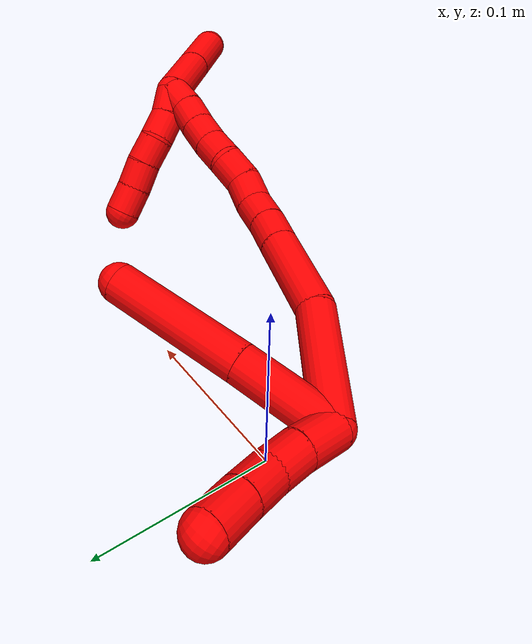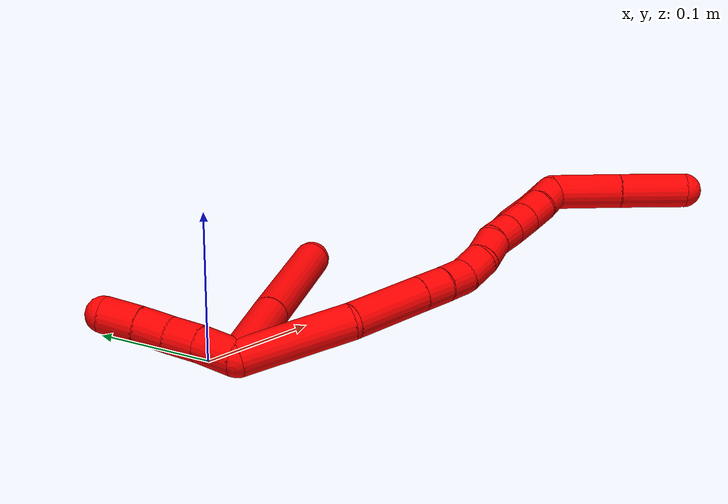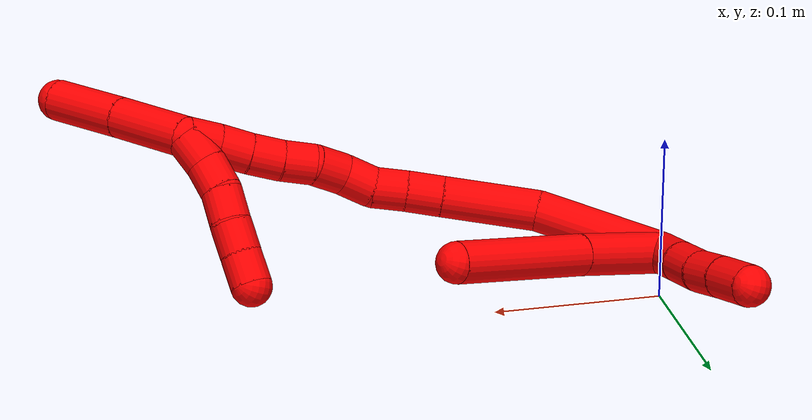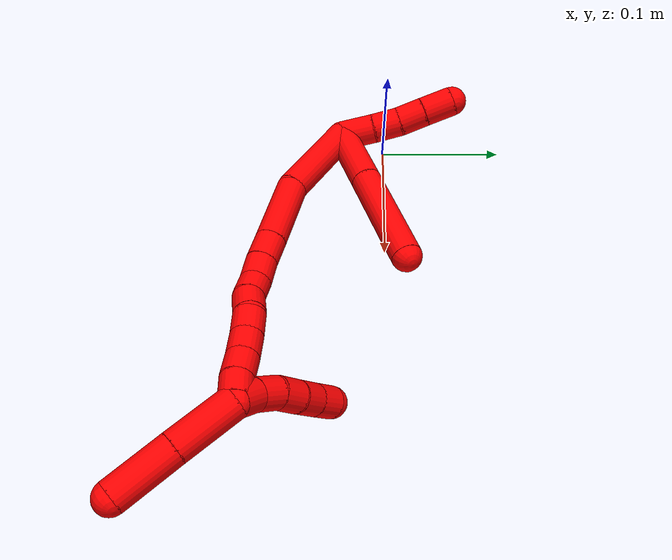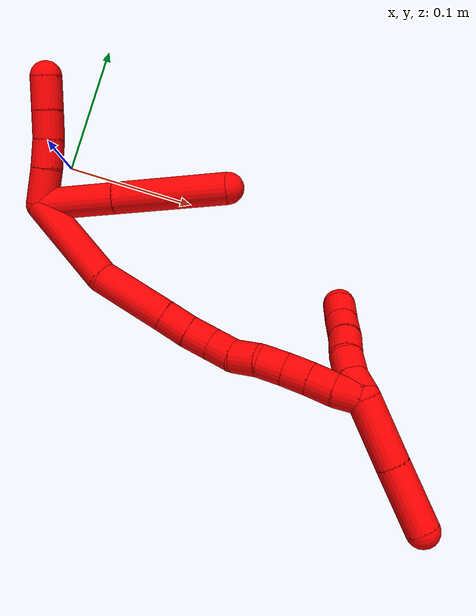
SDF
<sdf version="1.7">
 <world name="default">
  <model name="2">
   <static>0</static>
   <link name="2">
    <collision name="collision-cylinder-e_1_2_8">
     <pose>0.006293 0.001912 0.029765 -0.064143 0.207925 -0.006695</pose>
     <geometry><cylinder><radius>0.0125</radius><length>0.060966</length></cylinder></geometry>
     <surface>
      <friction><ode><mu>1.16</mu><mu2>1.16</mu2><slip1>0</slip1><slip2>0</slip2></ode></friction>
      <contact><ode><kp>1e+06</kp><kd>1</kd><max_vel>0</max_vel><min_depth>0.001</min_depth></ode></contact>
     </surface>
    </collision>
    <visual name="visual-cylinder-e_1_2_8">
     <pose>0.006293 0.001912 0.029765 -0.064143 0.207925 -0.006695</pose>
     <geometry><cylinder><radius>0.0125</radius><length>0.060966</length></cylinder></geometry>
     <material><ambient>1 0 0 1</ambient></material>
    </visual>
    <collision name="collision-cylinder-e_2_8_6">
     <pose>0.022599 0.007557 0.102745 -0.086172 0.226875 -0.009823</pose>
     <geometry><cylinder><radius>0.0125</radius><length>0.089034</length></cylinder></geometry>
     <surface>
      <friction><ode><mu>1.16</mu><mu2>1.16</mu2><slip1>0</slip1><slip2>0</slip2></ode></friction>
      <contact><ode><kp>1e+06</kp><kd>1</kd><max_vel>0</max_vel><min_depth>0.001</min_depth></ode></contact>
     </surface>
    </collision>
    <visual name="visual-cylinder-e_2_8_6">
     <pose>0.022599 0.007557 0.102745 -0.086172 0.226875 -0.009823</pose>
     <geometry><cylinder><radius>0.0125</radius><length>0.089034</length></cylinder></geometry>
     <material><ambient>1 0 0 1</ambient></material>
    </visual>
    <collision name="collision-cylinder-e_1_2_9">
     <pose>-0.009029 0.00991 0.004728 -1.12565 -0.68822 0.444705</pose>
     <geometry><cylinder><radius>0.0125</radius><length>0.028431</length></cylinder></geometry>
     <surface>
      <friction><ode><mu>1.16</mu><mu2>1.16</mu2><slip1>0</slip1><slip2>0</slip2></ode></friction>
      <contact><ode><kp>1e+06</kp><kd>1</kd><max_vel>0</max_vel><min_depth>0.001</min_depth></ode></contact>
     </surface>
    </collision>
    <visual name="visual-cylinder-e_1_2_9">
     <pose>-0.009029 0.00991 0.004728 -1.12565 -0.68822 0.444705</pose>
     <geometry><cylinder><radius>0.0125</radius><length>0.028431</length></cylinder></geometry>
     <material><ambient>1 0 0 1</ambient></material>
    </visual>
    <collision name="collision-cylinder-e_2_9_10">
     <pose>-0.025417 0.028088 0.012349 -1.23416 -0.698643 0.505825</pose>
     <geometry><cylinder><radius>0.0125</radius><length>0.022881</length></cylinder></geometry>
     <surface>
      <friction><ode><mu>1.16</mu><mu2>1.16</mu2><slip1>0</slip1><slip2>0</slip2></ode></friction>
      <contact><ode><kp>1e+06</kp><kd>1</kd><max_vel>0</max_vel><min_depth>0.001</min_depth></ode></contact>
     </surface>
    </collision>
    <visual name="visual-cylinder-e_2_9_10">
     <pose>-0.025417 0.028088 0.012349 -1.23416 -0.698643 0.505825</pose>
     <geometry><cylinder><radius>0.0125</radius><length>0.022881</length></cylinder></geometry>
     <material><ambient>1 0 0 1</ambient></material>
    </visual>
    <collision name="collision-cylinder-e_3_10_11">
     <pose>-0.040969 0.043817 0.017432 -1.28531 -0.811638 0.62246</pose>
     <geometry><cylinder><radius>0.0125</radius><length>0.022592</length></cylinder></geometry>
     <surface>
      <friction><ode><mu>1.16</mu><mu2>1.16</mu2><slip1>0</slip1><slip2>0</slip2></ode></friction>
      <contact><ode><kp>1e+06</kp><kd>1</kd><max_vel>0</max_vel><min_depth>0.001</min_depth></ode></contact>
     </surface>
    </collision>
    <visual name="visual-cylinder-e_3_10_11">
     <pose>-0.040969 0.043817 0.017432 -1.28531 -0.811638 0.62246</pose>
     <geometry><cylinder><radius>0.0125</radius><length>0.022592</length></cylinder></geometry>
     <material><ambient>1 0 0 1</ambient></material>
    </visual>
    <collision name="collision-cylinder-e_4_11_5">
     <pose>-0.058395 0.060238 0.021799 -1.33248 -0.785967 0.630085</pose>
     <geometry><cylinder><radius>0.0125</radius><length>0.026096</length></cylinder></geometry>
     <surface>
      <friction><ode><mu>1.16</mu><mu2>1.16</mu2><slip1>0</slip1><slip2>0</slip2></ode></friction>
      <contact><ode><kp>1e+06</kp><kd>1</kd><max_vel>0</max_vel><min_depth>0.001</min_depth></ode></contact>
     </surface>
    </collision>
    <visual name="visual-cylinder-e_4_11_5">
     <pose>-0.058395 0.060238 0.021799 -1.33248 -0.785967 0.630085</pose>
     <geometry><cylinder><radius>0.0125</radius><length>0.026096</length></cylinder></geometry>
     <material><ambient>1 0 0 1</ambient></material>
    </visual>
    <collision name="collision-cylinder-e_1_2_12">
     <pose>0.021186 -0.024422 0.022539 0.825469 0.567544 0.254038</pose>
     <geometry><cylinder><radius>0.0125</radius><length>0.078824</length></cylinder></geometry>
     <surface>
      <friction><ode><mu>1.16</mu><mu2>1.16</mu2><slip1>0</slip1><slip2>0</slip2></ode></friction>
      <contact><ode><kp>1e+06</kp><kd>1</kd><max_vel>0</max_vel><min_depth>0.001</min_depth></ode></contact>
     </surface>
    </collision>
    <visual name="visual-cylinder-e_1_2_12">
     <pose>0.021186 -0.024422 0.022539 0.825469 0.567544 0.254038</pose>
     <geometry><cylinder><radius>0.0125</radius><length>0.078824</length></cylinder></geometry>
     <material><ambient>1 0 0 1</ambient></material>
    </visual>
    <collision name="collision-cylinder-e_2_12_13">
     <pose>0.05793 -0.059929 0.066997 0.468223 0.564607 0.138125</pose>
     <geometry><cylinder><radius>0.0125</radius><length>0.05815</length></cylinder></geometry>
     <surface>
      <friction><ode><mu>1.16</mu><mu2>1.16</mu2><slip1>0</slip1><slip2>0</slip2></ode></friction>
      <contact><ode><kp>1e+06</kp><kd>1</kd><max_vel>0</max_vel><min_depth>0.001</min_depth></ode></contact>
     </surface>
    </collision>
    <visual name="visual-cylinder-e_2_12_13">
     <pose>0.05793 -0.059929 0.066997 0.468223 0.564607 0.138125</pose>
     <geometry><cylinder><radius>0.0125</radius><length>0.05815</length></cylinder></geometry>
     <material><ambient>1 0 0 1</ambient></material>
    </visual>
    <collision name="collision-cylinder-e_3_13_14">
     <pose>0.079386 -0.07528 0.09707 0.481995 0.56996 0.143753</pose>
     <geometry><cylinder><radius>0.0125</radius><length>0.021861</length></cylinder></geometry>
     <surface>
      <friction><ode><mu>1.16</mu><mu2>1.16</mu2><slip1>0</slip1><slip2>0</slip2></ode></friction>
      <contact><ode><kp>1e+06</kp><kd>1</kd><max_vel>0</max_vel><min_depth>0.001</min_depth></ode></contact>
     </surface>
    </collision>
    <visual name="visual-cylinder-e_3_13_14">
     <pose>0.079386 -0.07528 0.09707 0.481995 0.56996 0.143753</pose>
     <geometry><cylinder><radius>0.0125</radius><length>0.021861</length></cylinder></geometry>
     <material><ambient>1 0 0 1</ambient></material>
    </visual>
    <collision name="collision-cylinder-e_4_14_15">
     <pose>0.090657 -0.082859 0.113393 0.385394 0.547425 0.109453</pose>
     <geometry><cylinder><radius>0.0125</radius><length>0.020649</length></cylinder></geometry>
     <surface>
      <friction><ode><mu>1.16</mu><mu2>1.16</mu2><slip1>0</slip1><slip2>0</slip2></ode></friction>
      <contact><ode><kp>1e+06</kp><kd>1</kd><max_vel>0</max_vel><min_depth>0.001</min_depth></ode></contact>
     </surface>
    </collision>
    <visual name="visual-cylinder-e_4_14_15">
     <pose>0.090657 -0.082859 0.113393 0.385394 0.547425 0.109453</pose>
     <geometry><cylinder><radius>0.0125</radius><length>0.020649</length></cylinder></geometry>
     <material><ambient>1 0 0 1</ambient></material>
    </visual>
    <collision name="collision-cylinder-e_5_15_16">
     <pose>0.098426 -0.090976 0.130105 0.512119 0.239625 0.063016</pose>
     <geometry><cylinder><radius>0.0125</radius><length>0.020179</length></cylinder></geometry>
     <surface>
      <friction><ode><mu>1.16</mu><mu2>1.16</mu2><slip1>0</slip1><slip2>0</slip2></ode></friction>
      <contact><ode><kp>1e+06</kp><kd>1</kd><max_vel>0</max_vel><min_depth>0.001</min_depth></ode></contact>
     </surface>
    </collision>
    <visual name="visual-cylinder-e_5_15_16">
     <pose>0.098426 -0.090976 0.130105 0.512119 0.239625 0.063016</pose>
     <geometry><cylinder><radius>0.0125</radius><length>0.020179</length></cylinder></geometry>
     <material><ambient>1 0 0 1</ambient></material>
    </visual>
    <collision name="collision-cylinder-e_6_16_17">
     <pose>0.102077 -0.098118 0.148442 0.234452 0.124213 0.014647</pose>
     <geometry><cylinder><radius>0.0125</radius><length>0.020293</length></cylinder></geometry>
     <surface>
      <friction><ode><mu>1.16</mu><mu2>1.16</mu2><slip1>0</slip1><slip2>0</slip2></ode></friction>
      <contact><ode><kp>1e+06</kp><kd>1</kd><max_vel>0</max_vel><min_depth>0.001</min_depth></ode></contact>
     </surface>
    </collision>
    <visual name="visual-cylinder-e_6_16_17">
     <pose>0.102077 -0.098118 0.148442 0.234452 0.124213 0.014647</pose>
     <geometry><cylinder><radius>0.0125</radius><length>0.020293</length></cylinder></geometry>
     <material><ambient>1 0 0 1</ambient></material>
    </visual>
    <collision name="collision-cylinder-e_7_17_18">
     <pose>0.107353 -0.102812 0.167089 0.259937 0.413342 0.054795</pose>
     <geometry><cylinder><radius>0.0125</radius><length>0.02001</length></cylinder></geometry>
     <surface>
      <friction><ode><mu>1.16</mu><mu2>1.16</mu2><slip1>0</slip1><slip2>0</slip2></ode></friction>
      <contact><ode><kp>1e+06</kp><kd>1</kd><max_vel>0</max_vel><min_depth>0.001</min_depth></ode></contact>
     </surface>
    </collision>
    <visual name="visual-cylinder-e_7_17_18">
     <pose>0.107353 -0.102812 0.167089 0.259937 0.413342 0.054795</pose>
     <geometry><cylinder><radius>0.0125</radius><length>0.02001</length></cylinder></geometry>
     <material><ambient>1 0 0 1</ambient></material>
    </visual>
    <collision name="collision-cylinder-e_8_18_19">
     <pose>0.114902 -0.108295 0.184768 0.340711 0.36062 0.062695</pose>
     <geometry><cylinder><radius>0.0125</radius><length>0.020012</length></cylinder></geometry>
     <surface>
      <friction><ode><mu>1.16</mu><mu2>1.16</mu2><slip1>0</slip1><slip2>0</slip2></ode></friction>
      <contact><ode><kp>1e+06</kp><kd>1</kd><max_vel>0</max_vel><min_depth>0.001</min_depth></ode></contact>
     </surface>
    </collision>
    <visual name="visual-cylinder-e_8_18_19">
     <pose>0.114902 -0.108295 0.184768 0.340711 0.36062 0.062695</pose>
     <geometry><cylinder><radius>0.0125</radius><length>0.020012</length></cylinder></geometry>
     <material><ambient>1 0 0 1</ambient></material>
    </visual>
    <collision name="collision-cylinder-e_9_19_20">
     <pose>0.121592 -0.115156 0.202323 0.403967 0.321236 0.066329</pose>
     <geometry><cylinder><radius>0.0125</radius><length>0.020013</length></cylinder></geometry>
     <surface>
      <friction><ode><mu>1.16</mu><mu2>1.16</mu2><slip1>0</slip1><slip2>0</slip2></ode></friction>
      <contact><ode><kp>1e+06</kp><kd>1</kd><max_vel>0</max_vel><min_depth>0.001</min_depth></ode></contact>
     </surface>
    </collision>
    <visual name="visual-cylinder-e_9_19_20">
     <pose>0.121592 -0.115156 0.202323 0.403967 0.321236 0.066329</pose>
     <geometry><cylinder><radius>0.0125</radius><length>0.020013</length></cylinder></geometry>
     <material><ambient>1 0 0 1</ambient></material>
    </visual>
    <collision name="collision-cylinder-e_10_20_1">
     <pose>0.127398 -0.121338 0.220386 0.256694 0.26761 0.034741</pose>
     <geometry><cylinder><radius>0.0125</radius><length>0.020011</length></cylinder></geometry>
     <surface>
      <friction><ode><mu>1.16</mu><mu2>1.16</mu2><slip1>0</slip1><slip2>0</slip2></ode></friction>
      <contact><ode><kp>1e+06</kp><kd>1</kd><max_vel>0</max_vel><min_depth>0.001</min_depth></ode></contact>
     </surface>
    </collision>
    <visual name="visual-cylinder-e_10_20_1">
     <pose>0.127398 -0.121338 0.220386 0.256694 0.26761 0.034741</pose>
     <geometry><cylinder><radius>0.0125</radius><length>0.020011</length></cylinder></geometry>
     <material><ambient>1 0 0 1</ambient></material>
    </visual>
    <collision name="collision-cylinder-e_1_1_21">
     <pose>0.129623 -0.114951 0.225056 -2.05637 -0.042028 0.069681</pose>
     <geometry><cylinder><radius>0.0125</radius><length>0.02</length></cylinder></geometry>
     <surface>
      <friction><ode><mu>1.16</mu><mu2>1.16</mu2><slip1>0</slip1><slip2>0</slip2></ode></friction>
      <contact><ode><kp>1e+06</kp><kd>1</kd><max_vel>0</max_vel><min_depth>0.001</min_depth></ode></contact>
     </surface>
    </collision>
    <visual name="visual-cylinder-e_1_1_21">
     <pose>0.129623 -0.114951 0.225056 -2.05637 -0.042028 0.069681</pose>
     <geometry><cylinder><radius>0.0125</radius><length>0.02</length></cylinder></geometry>
     <material><ambient>1 0 0 1</ambient></material>
    </visual>
    <collision name="collision-cylinder-e_2_21_22">
     <pose>0.128799 -0.096448 0.217865 -1.82665 -0.040439 0.052374</pose>
     <geometry><cylinder><radius>0.0125</radius><length>0.02</length></cylinder></geometry>
     <surface>
      <friction><ode><mu>1.16</mu><mu2>1.16</mu2><slip1>0</slip1><slip2>0</slip2></ode></friction>
      <contact><ode><kp>1e+06</kp><kd>1</kd><max_vel>0</max_vel><min_depth>0.001</min_depth></ode></contact>
     </surface>
    </collision>
    <visual name="visual-cylinder-e_2_21_22">
     <pose>0.128799 -0.096448 0.217865 -1.82665 -0.040439 0.052374</pose>
     <geometry><cylinder><radius>0.0125</radius><length>0.02</length></cylinder></geometry>
     <material><ambient>1 0 0 1</ambient></material>
    </visual>
    <collision name="collision-cylinder-e_3_22_23">
     <pose>0.130036 -0.077049 0.213732 -1.7341 0.164857 -0.194074</pose>
     <geometry><cylinder><radius>0.0125</radius><length>0.02</length></cylinder></geometry>
     <surface>
      <friction><ode><mu>1.16</mu><mu2>1.16</mu2><slip1>0</slip1><slip2>0</slip2></ode></friction>
      <contact><ode><kp>1e+06</kp><kd>1</kd><max_vel>0</max_vel><min_depth>0.001</min_depth></ode></contact>
     </surface>
    </collision>
    <visual name="visual-cylinder-e_3_22_23">
     <pose>0.130036 -0.077049 0.213732 -1.7341 0.164857 -0.194074</pose>
     <geometry><cylinder><radius>0.0125</radius><length>0.02</length></cylinder></geometry>
     <material><ambient>1 0 0 1</ambient></material>
    </visual>
    <collision name="collision-cylinder-e_4_23_24">
     <pose>0.133797 -0.057913 0.209462 -1.84712 0.213636 -0.28184</pose>
     <geometry><cylinder><radius>0.0125</radius><length>0.02</length></cylinder></geometry>
     <surface>
      <friction><ode><mu>1.16</mu><mu2>1.16</mu2><slip1>0</slip1><slip2>0</slip2></ode></friction>
      <contact><ode><kp>1e+06</kp><kd>1</kd><max_vel>0</max_vel><min_depth>0.001</min_depth></ode></contact>
     </surface>
    </collision>
    <visual name="visual-cylinder-e_4_23_24">
     <pose>0.133797 -0.057913 0.209462 -1.84712 0.213636 -0.28184</pose>
     <geometry><cylinder><radius>0.0125</radius><length>0.02</length></cylinder></geometry>
     <material><ambient>1 0 0 1</ambient></material>
    </visual>
    <collision name="collision-cylinder-e_5_24_4">
     <pose>0.137498 -0.038872 0.204658 -1.78908 0.158768 -0.197616</pose>
     <geometry><cylinder><radius>0.0125</radius><length>0.02</length></cylinder></geometry>
     <surface>
      <friction><ode><mu>1.16</mu><mu2>1.16</mu2><slip1>0</slip1><slip2>0</slip2></ode></friction>
      <contact><ode><kp>1e+06</kp><kd>1</kd><max_vel>0</max_vel><min_depth>0.001</min_depth></ode></contact>
     </surface>
    </collision>
    <visual name="visual-cylinder-e_5_24_4">
     <pose>0.137498 -0.038872 0.204658 -1.78908 0.158768 -0.197616</pose>
     <geometry><cylinder><radius>0.0125</radius><length>0.02</length></cylinder></geometry>
     <material><ambient>1 0 0 1</ambient></material>
    </visual>
    <collision name="collision-cylinder-e_1_1_25">
     <pose>0.147334 -0.140986 0.235998 1.22074 0.756797 0.542454</pose>
     <geometry><cylinder><radius>0.0125</radius><length>0.050367</length></cylinder></geometry>
     <surface>
      <friction><ode><mu>1.16</mu><mu2>1.16</mu2><slip1>0</slip1><slip2>0</slip2></ode></friction>
      <contact><ode><kp>1e+06</kp><kd>1</kd><max_vel>0</max_vel><min_depth>0.001</min_depth></ode></contact>
     </surface>
    </collision>
    <visual name="visual-cylinder-e_1_1_25">
     <pose>0.147334 -0.140986 0.235998 1.22074 0.756797 0.542454</pose>
     <geometry><cylinder><radius>0.0125</radius><length>0.050367</length></cylinder></geometry>
     <material><ambient>1 0 0 1</ambient></material>
    </visual>
    <collision name="collision-cylinder-e_2_25_3">
     <pose>0.181866 -0.174881 0.248591 1.20928 0.768048 0.544557</pose>
     <geometry><cylinder><radius>0.0125</radius><length>0.049633</length></cylinder></geometry>
     <surface>
      <friction><ode><mu>1.16</mu><mu2>1.16</mu2><slip1>0</slip1><slip2>0</slip2></ode></friction>
      <contact><ode><kp>1e+06</kp><kd>1</kd><max_vel>0</max_vel><min_depth>0.001</min_depth></ode></contact>
     </surface>
    </collision>
    <visual name="visual-cylinder-e_2_25_3">
     <pose>0.181866 -0.174881 0.248591 1.20928 0.768048 0.544557</pose>
     <geometry><cylinder><radius>0.0125</radius><length>0.049633</length></cylinder></geometry>
     <material><ambient>1 0 0 1</ambient></material>
    </visual>
    <collision name="collision-sphere-3">
     <pose>0.199107 -0.191577 0.254904 0 -0 0</pose>
     <geometry><sphere><radius>0.0125</radius></sphere></geometry>
     <surface>
      <friction><ode><mu>1.16</mu><mu2>1.16</mu2><slip1>0</slip1><slip2>0</slip2></ode></friction>
      <contact><ode><kp>1e+06</kp><kd>1</kd><max_vel>0</max_vel><min_depth>0.001</min_depth></ode></contact>
     </surface>
    </collision>
    <visual name="visual-sphere-3">
     <pose>0.199107 -0.191577 0.254904 0 -0 0</pose>
     <geometry><sphere><radius>0.0125</radius></sphere></geometry>
     <material><ambient>1 0 0 1</ambient></material>
    </visual>
    <collision name="collision-sphere-25">
     <pose>0.164625 -0.158185 0.242278 0 -0 0</pose>
     <geometry><sphere><radius>0.0125</radius></sphere></geometry>
     <surface>
      <friction><ode><mu>1.16</mu><mu2>1.16</mu2><slip1>0</slip1><slip2>0</slip2></ode></friction>
      <contact><ode><kp>1e+06</kp><kd>1</kd><max_vel>0</max_vel><min_depth>0.001</min_depth></ode></contact>
     </surface>
    </collision>
    <visual name="visual-sphere-25">
     <pose>0.164625 -0.158185 0.242278 0 -0 0</pose>
     <geometry><sphere><radius>0.0125</radius></sphere></geometry>
     <material><ambient>1 0 0 1</ambient></material>
    </visual>
    <collision name="collision-sphere-4">
     <pose>0.139079 -0.029232 0.20252 0 -0 0</pose>
     <geometry><sphere><radius>0.0125</radius></sphere></geometry>
     <surface>
      <friction><ode><mu>1.16</mu><mu2>1.16</mu2><slip1>0</slip1><slip2>0</slip2></ode></friction>
      <contact><ode><kp>1e+06</kp><kd>1</kd><max_vel>0</max_vel><min_depth>0.001</min_depth></ode></contact>
     </surface>
    </collision>
    <visual name="visual-sphere-4">
     <pose>0.139079 -0.029232 0.20252 0 -0 0</pose>
     <geometry><sphere><radius>0.0125</radius></sphere></geometry>
     <material><ambient>1 0 0 1</ambient></material>
    </visual>
    <collision name="collision-sphere-24">
     <pose>0.135917 -0.048511 0.206796 0 -0 0</pose>
     <geometry><sphere><radius>0.0125</radius></sphere></geometry>
     <surface>
      <friction><ode><mu>1.16</mu><mu2>1.16</mu2><slip1>0</slip1><slip2>0</slip2></ode></friction>
      <contact><ode><kp>1e+06</kp><kd>1</kd><max_vel>0</max_vel><min_depth>0.001</min_depth></ode></contact>
     </surface>
    </collision>
    <visual name="visual-sphere-24">
     <pose>0.135917 -0.048511 0.206796 0 -0 0</pose>
     <geometry><sphere><radius>0.0125</radius></sphere></geometry>
     <material><ambient>1 0 0 1</ambient></material>
    </visual>
    <collision name="collision-sphere-23">
     <pose>0.131677 -0.067315 0.212129 0 -0 0</pose>
     <geometry><sphere><radius>0.0125</radius></sphere></geometry>
     <surface>
      <friction><ode><mu>1.16</mu><mu2>1.16</mu2><slip1>0</slip1><slip2>0</slip2></ode></friction>
      <contact><ode><kp>1e+06</kp><kd>1</kd><max_vel>0</max_vel><min_depth>0.001</min_depth></ode></contact>
     </surface>
    </collision>
    <visual name="visual-sphere-23">
     <pose>0.131677 -0.067315 0.212129 0 -0 0</pose>
     <geometry><sphere><radius>0.0125</radius></sphere></geometry>
     <material><ambient>1 0 0 1</ambient></material>
    </visual>
    <collision name="collision-sphere-22">
     <pose>0.128394 -0.086782 0.215336 0 -0 0</pose>
     <geometry><sphere><radius>0.0125</radius></sphere></geometry>
     <surface>
      <friction><ode><mu>1.16</mu><mu2>1.16</mu2><slip1>0</slip1><slip2>0</slip2></ode></friction>
      <contact><ode><kp>1e+06</kp><kd>1</kd><max_vel>0</max_vel><min_depth>0.001</min_depth></ode></contact>
     </surface>
    </collision>
    <visual name="visual-sphere-22">
     <pose>0.128394 -0.086782 0.215336 0 -0 0</pose>
     <geometry><sphere><radius>0.0125</radius></sphere></geometry>
     <material><ambient>1 0 0 1</ambient></material>
    </visual>
    <collision name="collision-sphere-21">
     <pose>0.129203 -0.106115 0.220393 0 -0 0</pose>
     <geometry><sphere><radius>0.0125</radius></sphere></geometry>
     <surface>
      <friction><ode><mu>1.16</mu><mu2>1.16</mu2><slip1>0</slip1><slip2>0</slip2></ode></friction>
      <contact><ode><kp>1e+06</kp><kd>1</kd><max_vel>0</max_vel><min_depth>0.001</min_depth></ode></contact>
     </surface>
    </collision>
    <visual name="visual-sphere-21">
     <pose>0.129203 -0.106115 0.220393 0 -0 0</pose>
     <geometry><sphere><radius>0.0125</radius></sphere></geometry>
     <material><ambient>1 0 0 1</ambient></material>
    </visual>
    <collision name="collision-sphere-1">
     <pose>0.130043 -0.123787 0.229719 0 -0 0</pose>
     <geometry><sphere><radius>0.0125</radius></sphere></geometry>
     <surface>
      <friction><ode><mu>1.16</mu><mu2>1.16</mu2><slip1>0</slip1><slip2>0</slip2></ode></friction>
      <contact><ode><kp>1e+06</kp><kd>1</kd><max_vel>0</max_vel><min_depth>0.001</min_depth></ode></contact>
     </surface>
    </collision>
    <visual name="visual-sphere-1">
     <pose>0.130043 -0.123787 0.229719 0 -0 0</pose>
     <geometry><sphere><radius>0.0125</radius></sphere></geometry>
     <material><ambient>1 0 0 1</ambient></material>
    </visual>
    <collision name="collision-sphere-11">
     <pose>-0.049163 0.051277 0.019622 0 -0 0</pose>
     <geometry><sphere><radius>0.0125</radius></sphere></geometry>
     <surface>
      <friction><ode><mu>1.16</mu><mu2>1.16</mu2><slip1>0</slip1><slip2>0</slip2></ode></friction>
      <contact><ode><kp>1e+06</kp><kd>1</kd><max_vel>0</max_vel><min_depth>0.001</min_depth></ode></contact>
     </surface>
    </collision>
    <visual name="visual-sphere-11">
     <pose>-0.049163 0.051277 0.019622 0 -0 0</pose>
     <geometry><sphere><radius>0.0125</radius></sphere></geometry>
     <material><ambient>1 0 0 1</ambient></material>
    </visual>
    <collision name="collision-sphere-10">
     <pose>-0.032775 0.036357 0.015243 0 -0 0</pose>
     <geometry><sphere><radius>0.0125</radius></sphere></geometry>
     <surface>
      <friction><ode><mu>1.16</mu><mu2>1.16</mu2><slip1>0</slip1><slip2>0</slip2></ode></friction>
      <contact><ode><kp>1e+06</kp><kd>1</kd><max_vel>0</max_vel><min_depth>0.001</min_depth></ode></contact>
     </surface>
    </collision>
    <visual name="visual-sphere-10">
     <pose>-0.032775 0.036357 0.015243 0 -0 0</pose>
     <geometry><sphere><radius>0.0125</radius></sphere></geometry>
     <material><ambient>1 0 0 1</ambient></material>
    </visual>
    <collision name="collision-sphere-6">
     <pose>0.032612 0.01129 0.145961 0 -0 0</pose>
     <geometry><sphere><radius>0.0125</radius></sphere></geometry>
     <surface>
      <friction><ode><mu>1.16</mu><mu2>1.16</mu2><slip1>0</slip1><slip2>0</slip2></ode></friction>
      <contact><ode><kp>1e+06</kp><kd>1</kd><max_vel>0</max_vel><min_depth>0.001</min_depth></ode></contact>
     </surface>
    </collision>
    <visual name="visual-sphere-6">
     <pose>0.032612 0.01129 0.145961 0 -0 0</pose>
     <geometry><sphere><radius>0.0125</radius></sphere></geometry>
     <material><ambient>1 0 0 1</ambient></material>
    </visual>
    <collision name="collision-sphere-9">
     <pose>-0.018059 0.01982 0.009456 0 -0 0</pose>
     <geometry><sphere><radius>0.0125</radius></sphere></geometry>
     <surface>
      <friction><ode><mu>1.16</mu><mu2>1.16</mu2><slip1>0</slip1><slip2>0</slip2></ode></friction>
      <contact><ode><kp>1e+06</kp><kd>1</kd><max_vel>0</max_vel><min_depth>0.001</min_depth></ode></contact>
     </surface>
    </collision>
    <visual name="visual-sphere-9">
     <pose>-0.018059 0.01982 0.009456 0 -0 0</pose>
     <geometry><sphere><radius>0.0125</radius></sphere></geometry>
     <material><ambient>1 0 0 1</ambient></material>
    </visual>
    <collision name="collision-sphere-2">
     <geometry><sphere><radius>0.0125</radius></sphere></geometry>
     <surface>
      <friction><ode><mu>1.16</mu><mu2>1.16</mu2><slip1>0</slip1><slip2>0</slip2></ode></friction>
      <contact><ode><kp>1e+06</kp><kd>1</kd><max_vel>0</max_vel><min_depth>0.001</min_depth></ode></contact>
     </surface>
    </collision>
    <visual name="visual-sphere-2">
     <geometry><sphere><radius>0.0125</radius></sphere></geometry>
     <material><ambient>1 0 0 1</ambient></material>
    </visual>
    <collision name="collision-sphere-19">
     <pose>0.118433 -0.111424 0.193592 0 -0 0</pose>
     <geometry><sphere><radius>0.0125</radius></sphere></geometry>
     <surface>
      <friction><ode><mu>1.16</mu><mu2>1.16</mu2><slip1>0</slip1><slip2>0</slip2></ode></friction>
      <contact><ode><kp>1e+06</kp><kd>1</kd><max_vel>0</max_vel><min_depth>0.001</min_depth></ode></contact>
     </surface>
    </collision>
    <visual name="visual-sphere-19">
     <pose>0.118433 -0.111424 0.193592 0 -0 0</pose>
     <geometry><sphere><radius>0.0125</radius></sphere></geometry>
     <material><ambient>1 0 0 1</ambient></material>
    </visual>
    <collision name="collision-sphere-8">
     <pose>0.012585 0.003824 0.05953 0 -0 0</pose>
     <geometry><sphere><radius>0.0125</radius></sphere></geometry>
     <surface>
      <friction><ode><mu>1.16</mu><mu2>1.16</mu2><slip1>0</slip1><slip2>0</slip2></ode></friction>
      <contact><ode><kp>1e+06</kp><kd>1</kd><max_vel>0</max_vel><min_depth>0.001</min_depth></ode></contact>
     </surface>
    </collision>
    <visual name="visual-sphere-8">
     <pose>0.012585 0.003824 0.05953 0 -0 0</pose>
     <geometry><sphere><radius>0.0125</radius></sphere></geometry>
     <material><ambient>1 0 0 1</ambient></material>
    </visual>
    <collision name="collision-sphere-5">
     <pose>-0.067627 0.069198 0.023976 0 -0 0</pose>
     <geometry><sphere><radius>0.0125</radius></sphere></geometry>
     <surface>
      <friction><ode><mu>1.16</mu><mu2>1.16</mu2><slip1>0</slip1><slip2>0</slip2></ode></friction>
      <contact><ode><kp>1e+06</kp><kd>1</kd><max_vel>0</max_vel><min_depth>0.001</min_depth></ode></contact>
     </surface>
    </collision>
    <visual name="visual-sphere-5">
     <pose>-0.067627 0.069198 0.023976 0 -0 0</pose>
     <geometry><sphere><radius>0.0125</radius></sphere></geometry>
     <material><ambient>1 0 0 1</ambient></material>
    </visual>
    <collision name="collision-sphere-12">
     <pose>0.042373 -0.048844 0.045078 0 -0 0</pose>
     <geometry><sphere><radius>0.0125</radius></sphere></geometry>
     <surface>
      <friction><ode><mu>1.16</mu><mu2>1.16</mu2><slip1>0</slip1><slip2>0</slip2></ode></friction>
      <contact><ode><kp>1e+06</kp><kd>1</kd><max_vel>0</max_vel><min_depth>0.001</min_depth></ode></contact>
     </surface>
    </collision>
    <visual name="visual-sphere-12">
     <pose>0.042373 -0.048844 0.045078 0 -0 0</pose>
     <geometry><sphere><radius>0.0125</radius></sphere></geometry>
     <material><ambient>1 0 0 1</ambient></material>
    </visual>
    <collision name="collision-sphere-13">
     <pose>0.073488 -0.071014 0.088916 0 -0 0</pose>
     <geometry><sphere><radius>0.0125</radius></sphere></geometry>
     <surface>
      <friction><ode><mu>1.16</mu><mu2>1.16</mu2><slip1>0</slip1><slip2>0</slip2></ode></friction>
      <contact><ode><kp>1e+06</kp><kd>1</kd><max_vel>0</max_vel><min_depth>0.001</min_depth></ode></contact>
     </surface>
    </collision>
    <visual name="visual-sphere-13">
     <pose>0.073488 -0.071014 0.088916 0 -0 0</pose>
     <geometry><sphere><radius>0.0125</radius></sphere></geometry>
     <material><ambient>1 0 0 1</ambient></material>
    </visual>
    <collision name="collision-sphere-14">
     <pose>0.085284 -0.079545 0.105224 0 -0 0</pose>
     <geometry><sphere><radius>0.0125</radius></sphere></geometry>
     <surface>
      <friction><ode><mu>1.16</mu><mu2>1.16</mu2><slip1>0</slip1><slip2>0</slip2></ode></friction>
      <contact><ode><kp>1e+06</kp><kd>1</kd><max_vel>0</max_vel><min_depth>0.001</min_depth></ode></contact>
     </surface>
    </collision>
    <visual name="visual-sphere-14">
     <pose>0.085284 -0.079545 0.105224 0 -0 0</pose>
     <geometry><sphere><radius>0.0125</radius></sphere></geometry>
     <material><ambient>1 0 0 1</ambient></material>
    </visual>
    <collision name="collision-sphere-15">
     <pose>0.096031 -0.086173 0.121562 0 -0 0</pose>
     <geometry><sphere><radius>0.0125</radius></sphere></geometry>
     <surface>
      <friction><ode><mu>1.16</mu><mu2>1.16</mu2><slip1>0</slip1><slip2>0</slip2></ode></friction>
      <contact><ode><kp>1e+06</kp><kd>1</kd><max_vel>0</max_vel><min_depth>0.001</min_depth></ode></contact>
     </surface>
    </collision>
    <visual name="visual-sphere-15">
     <pose>0.096031 -0.086173 0.121562 0 -0 0</pose>
     <geometry><sphere><radius>0.0125</radius></sphere></geometry>
     <material><ambient>1 0 0 1</ambient></material>
    </visual>
    <collision name="collision-sphere-16">
     <pose>0.10082 -0.095779 0.138649 0 -0 0</pose>
     <geometry><sphere><radius>0.0125</radius></sphere></geometry>
     <surface>
      <friction><ode><mu>1.16</mu><mu2>1.16</mu2><slip1>0</slip1><slip2>0</slip2></ode></friction>
      <contact><ode><kp>1e+06</kp><kd>1</kd><max_vel>0</max_vel><min_depth>0.001</min_depth></ode></contact>
     </surface>
    </collision>
    <visual name="visual-sphere-16">
     <pose>0.10082 -0.095779 0.138649 0 -0 0</pose>
     <geometry><sphere><radius>0.0125</radius></sphere></geometry>
     <material><ambient>1 0 0 1</ambient></material>
    </visual>
    <collision name="collision-sphere-17">
     <pose>0.103334 -0.100457 0.158235 0 -0 0</pose>
     <geometry><sphere><radius>0.0125</radius></sphere></geometry>
     <surface>
      <friction><ode><mu>1.16</mu><mu2>1.16</mu2><slip1>0</slip1><slip2>0</slip2></ode></friction>
      <contact><ode><kp>1e+06</kp><kd>1</kd><max_vel>0</max_vel><min_depth>0.001</min_depth></ode></contact>
     </surface>
    </collision>
    <visual name="visual-sphere-17">
     <pose>0.103334 -0.100457 0.158235 0 -0 0</pose>
     <geometry><sphere><radius>0.0125</radius></sphere></geometry>
     <material><ambient>1 0 0 1</ambient></material>
    </visual>
    <collision name="collision-sphere-18">
     <pose>0.111372 -0.105167 0.175944 0 -0 0</pose>
     <geometry><sphere><radius>0.0125</radius></sphere></geometry>
     <surface>
      <friction><ode><mu>1.16</mu><mu2>1.16</mu2><slip1>0</slip1><slip2>0</slip2></ode></friction>
      <contact><ode><kp>1e+06</kp><kd>1</kd><max_vel>0</max_vel><min_depth>0.001</min_depth></ode></contact>
     </surface>
    </collision>
    <visual name="visual-sphere-18">
     <pose>0.111372 -0.105167 0.175944 0 -0 0</pose>
     <geometry><sphere><radius>0.0125</radius></sphere></geometry>
     <material><ambient>1 0 0 1</ambient></material>
    </visual>
    <collision name="collision-sphere-20">
     <pose>0.124752 -0.118888 0.211053 0 -0 0</pose>
     <geometry><sphere><radius>0.0125</radius></sphere></geometry>
     <surface>
      <friction><ode><mu>1.16</mu><mu2>1.16</mu2><slip1>0</slip1><slip2>0</slip2></ode></friction>
      <contact><ode><kp>1e+06</kp><kd>1</kd><max_vel>0</max_vel><min_depth>0.001</min_depth></ode></contact>
     </surface>
    </collision>
    <visual name="visual-sphere-20">
     <pose>0.124752 -0.118888 0.211053 0 -0 0</pose>
     <geometry><sphere><radius>0.0125</radius></sphere></geometry>
     <material><ambient>1 0 0 1</ambient></material>
    </visual>
    <inertial>
     <pose>0.067846 -0.054347 0.119008 0 -0 0</pose>
     <mass>0.75</mass>
     <inertia><ixx>0.000209</ixx><ixy>0</ixy><ixz>0</ixz><iyy>0.000187</iyy><iyz>0</iyz><izz>-1e-06</izz></inertia>
    </inertial>
   </link>
   <pose>-0.011092 -0.035724 0.011491 -0.947295 0.79571 -0.666114</pose>
  </model>
 </world>
</sdf>
